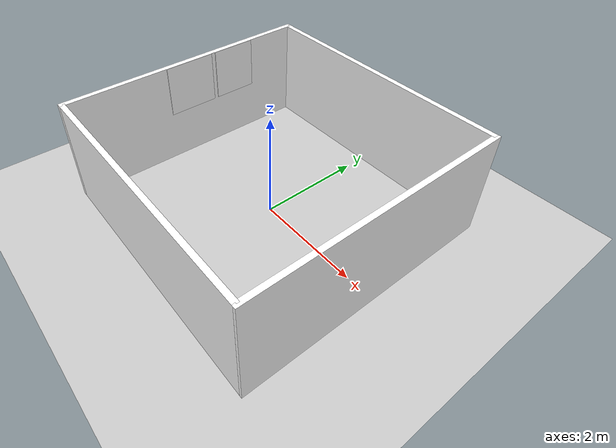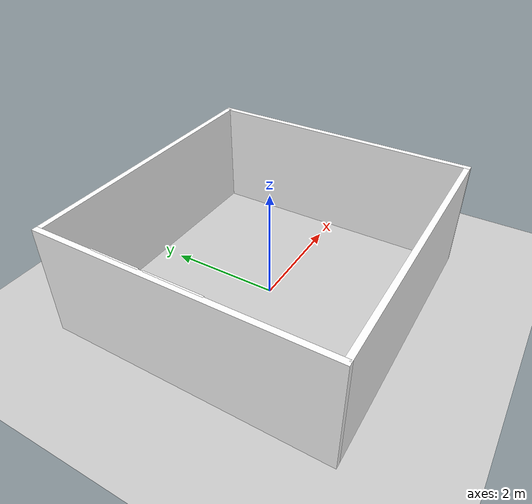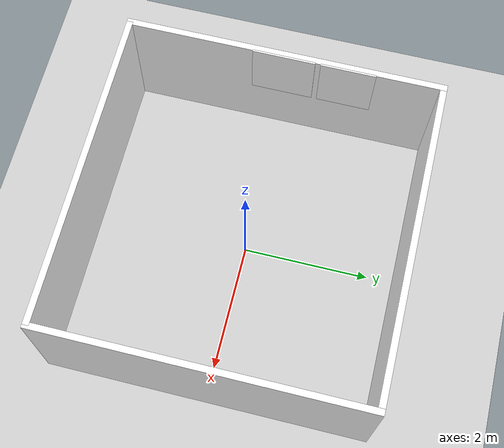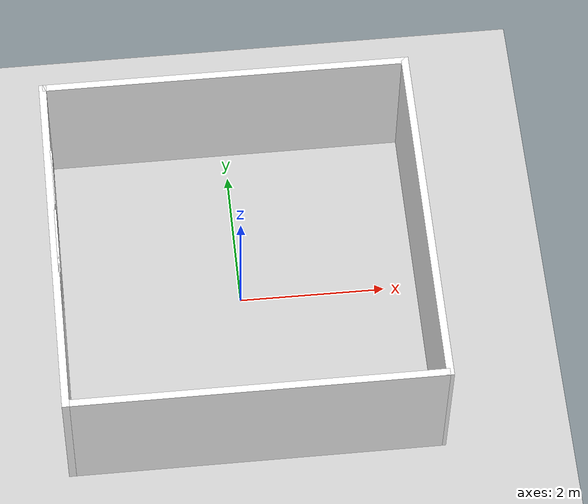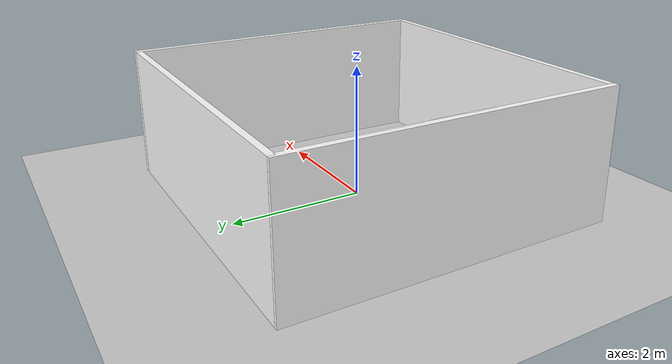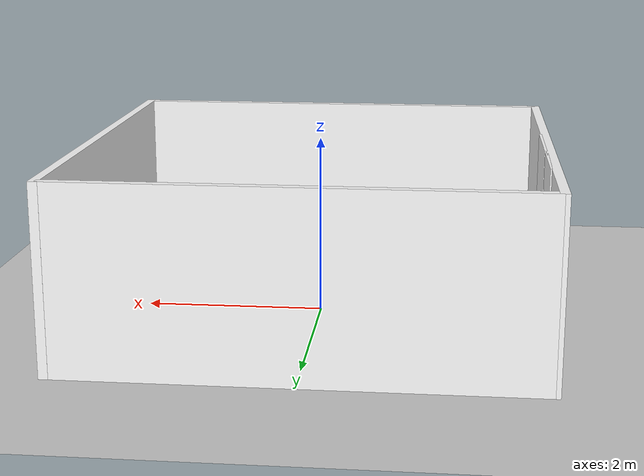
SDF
<sdf version='1.10'>
  <world name='default'>
    <scene>
      <shadows>false</shadows>
      <ambient>0.400000006 0.400000006 0.400000006 1</ambient>
      <background>0.699999988 0.699999988 0.699999988 1</background>
    </scene>
    <gui fullscreen='false'>
      <camera name='user_camera'>
        <pose>0.31965399999999999 -0.23500199999999999 9.2944099999999992 1.522609579747792e-17 1.5138000000000049 0.0095990000000000172</pose>
        <view_controller>orbit</view_controller>
        <projection_type>perspective</projection_type>
      </camera>
    </gui>
    <physics type='ode'>
      <real_time_update_rate>1000</real_time_update_rate>
      <max_step_size>0.001</max_step_size>
      <real_time_factor>1</real_time_factor>
      <ode>
        <solver>
          <type>quick</type>
          <iters>150</iters>
          <precon_iters>0</precon_iters>
          <sor>1.3999999999999999</sor>
          <use_dynamic_moi_rescaling>true</use_dynamic_moi_rescaling>
        </solver>
        <constraints>
          <cfm>1.0000000000000001e-05</cfm>
          <erp>0.20000000000000001</erp>
          <contact_max_correcting_vel>2000</contact_max_correcting_vel>
          <contact_surface_layer>0.01</contact_surface_layer>
        </constraints>
      </ode>
    </physics>
    <plugin name='gz::sim::systems::Physics' filename='gz-sim-physics-system'/>
    <plugin name='gz::sim::systems::UserCommands' filename='gz-sim-user-commands-system'/>
    <plugin name='gz::sim::systems::SceneBroadcaster' filename='gz-sim-scene-broadcaster-system'/>
    <plugin name='gz::sim::systems::Sensors' filename='gz-sim-sensors-system'>
      <render_engine>ogre2</render_engine>
    </plugin>
    <plugin name='gz::sim::systems::Imu' filename='gz-sim-imu-system'/>
    <gravity>0 0 -9.8000000000000007</gravity>
    <magnetic_field>5.5644999999999998e-06 2.2875799999999999e-05 -4.2388400000000002e-05</magnetic_field>
    <atmosphere type='adiabatic'/>
    <include>
      <uri>model://ground plane</uri>
      <name>ground_plane</name>
      <pose>0 0 0 0 0 0</pose>
    </include>

    <model name='makerspet_poster'>
      <static>true</static>
      <include>
        <uri>model://makerspet_poster</uri>
      </include>
      <pose>-2.45 1 1.5 0 -0 0</pose>
      <self_collide>false</self_collide>
    </model>

    <model name='kaiaai_poster'>
      <static>true</static>
      <include>
        <uri>model://kaiaai_poster</uri>
      </include>
      <pose>-2.45 0 1.5 0 -0 0</pose>
      <self_collide>false</self_collide>
    </model>

    <model name='wall_0'>
      <static>true</static>
      <include>
        <uri>model://room_wall_2x5m</uri>
      </include>
      <pose>-2.5 0 1 0 -0 0</pose>
      <self_collide>false</self_collide>
    </model>

    <model name='wall_1'>
      <static>true</static>
      <include>
        <uri>model://room_wall_2x5m</uri>
      </include>
      <pose>2.5 0 1 0 -0 0</pose>
      <self_collide>false</self_collide>
    </model>

    <model name='wall_2'>
      <static>true</static>
      <include>
        <uri>model://room_wall_2x5m</uri>
      </include>
      <pose>0 2.45 1 0 -0 1.5707</pose>
      <self_collide>false</self_collide>
    </model>

    <model name='wall_3'>
      <static>true</static>
      <include>
        <uri>model://room_wall_2x5m</uri>
      </include>
      <pose>0 -2.45 1 0 -0 1.5707</pose>
      <self_collide>false</self_collide>
    </model>

    <light name='sun' type='directional'>
      <pose>0 0 10 0 0 0</pose>
      <cast_shadows>true</cast_shadows>
      <intensity>4</intensity>
      <direction>-0.5 0.10000000000000001 -0.90000000000000002</direction>
      <diffuse>0.800000012 0.800000012 0.800000012 1</diffuse>
      <specular>0.200000003 0.200000003 0.200000003 1</specular>
      <attenuation>
        <range>1000</range>
        <linear>0.0099999997764825821</linear>
        <constant>0.89999997615814209</constant>
        <quadratic>0.0010000000474974513</quadratic>
      </attenuation>
      <spot>
        <inner_angle>0</inner_angle>
        <outer_angle>0</outer_angle>
        <falloff>0</falloff>
      </spot>
    </light>

  </world>
</sdf>

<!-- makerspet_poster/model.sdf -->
<sdf version='1.4'>
  <model name='makerspet_poster'>
    <link name="link">
      <visual name="visual">
        <geometry>
          <box>
            <size>0.03 0.85714 1</size>
          </box>
        </geometry>
        <material>
          <pbr>
            <metal>
              <albedo_map>textures/makerspet_logo_600x700.png</albedo_map>
            <metalness>0.0</metalness><roughness>0.80</roughness>
            </metal>
          </pbr>
          <ambient>1 1 1 1</ambient>
          <diffuse>1 1 1 1</diffuse>
          <specular>1 1 1 1</specular>
          <emissive>0 0 0 1</emissive>
        </material>
      </visual>
    </link>
    <static>1</static>
    <allow_auto_disable>1</allow_auto_disable>
  </model>
</sdf>

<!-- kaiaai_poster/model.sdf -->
<sdf version='1.4'>
  <model name='kaiaai_poster'>
    <link name="link">
      <visual name="visual">
        <geometry>
          <box>
            <size>0.03 0.9782 1</size>
          </box>
        </geometry>
        <material>
          <pbr>
            <metal>
              <albedo_map>textures/kaiaai_logo_450x460.png</albedo_map>
            <metalness>0.0</metalness><roughness>0.80</roughness>
            </metal>
          </pbr>
          <ambient>1 1 1 1</ambient>
          <diffuse>1 1 1 1</diffuse>
          <specular>1 1 1 1</specular>
          <emissive>0 0 0 1</emissive>
        </material>
      </visual>
    </link>
    <static>1</static>
    <allow_auto_disable>1</allow_auto_disable>
  </model>
</sdf>

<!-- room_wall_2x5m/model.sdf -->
<sdf version='1.4'>
  <model name='room_wall_2x5m'>
    <link name="link">
      <visual name="visual">
        <geometry>
          <box>
            <size>0.1 5.0 2.0</size>
          </box>
        </geometry>
        <material>
          <pbr>
            <metal>
              <albedo_map>textures/wall_texture_1404x562.jpg</albedo_map>
            <metalness>0.0</metalness><roughness>0.90</roughness>
            </metal>
          </pbr>
          <ambient>1 1 1 1</ambient>
          <diffuse>1 1 1 1</diffuse>
          <specular>1 1 1 1</specular>
          <emissive>0 0 0 1</emissive>
        </material>
        <cast_shadows>1</cast_shadows>
        <transparency>0</transparency>
      </visual>
      <collision name ="collision">
        <geometry>
           <box>
            <size>0.1 5.0 2.0</size>
          </box>
        </geometry>
      </collision>
    </link>
    <static>1</static>
    <allow_auto_disable>1</allow_auto_disable>
  </model>
</sdf>
